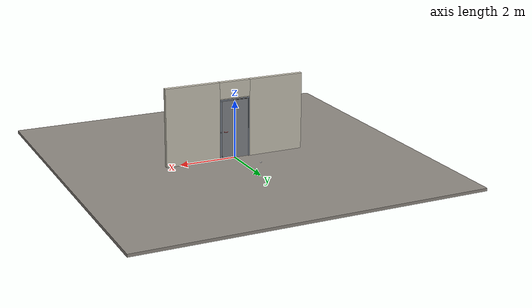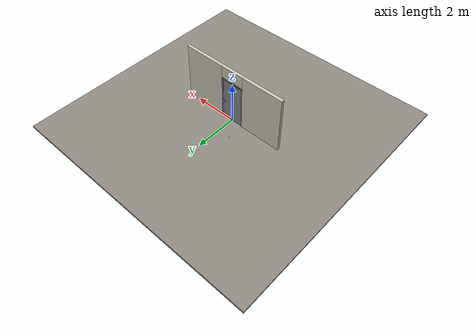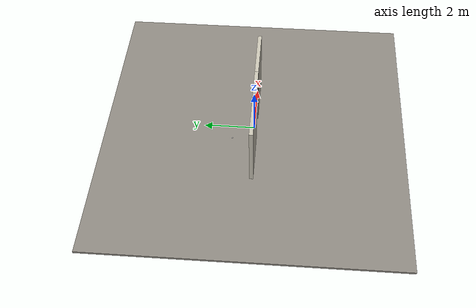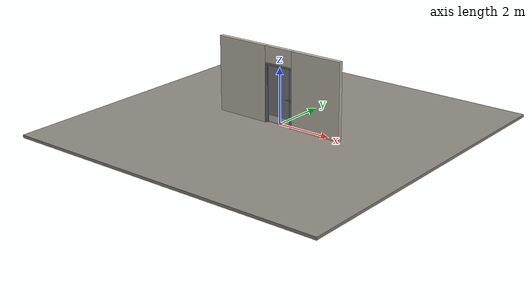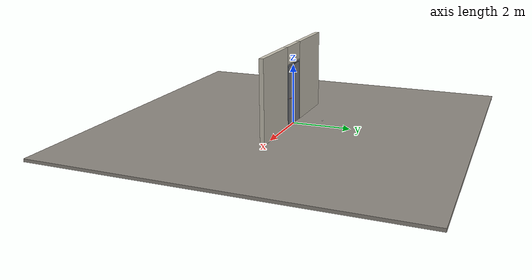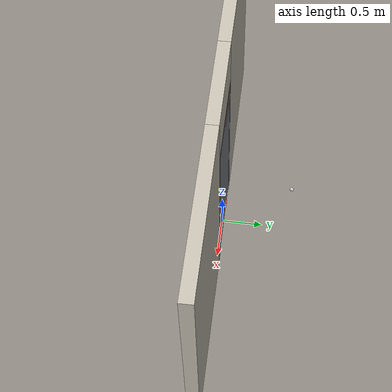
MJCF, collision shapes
<?xml version="1.0" ?>
<mujoco model="db0820_swing_single_full">
  <compiler angle="radian" meshdir="../../hardware" texturedir="../../textures" autolimits="true" inertiafromgeom="false"/>
  <option timestep="0.002" integrator="implicitfast" cone="elliptic" impratio="10" noslip_iterations="3">
    <flag multiccd="enable"/>
  </option>
  <size memory="16M"/>
  <default>
    <geom condim="4" solref="0.005 1" solimp="0.95 0.99 0.001"/>
    <joint solreflimit="0.005 1" solimplimit="0.95 0.99 0.001"/>
    <tendon solreflimit="0.005 1"/>
    <equality solref="0.002 1"/>
  </default>
  <visual>
    <headlight ambient="0.4 0.4 0.4" diffuse="0.7 0.7 0.7" specular="0.2 0.2 0.2"/>
    <quality shadowsize="4096"/>
    <map znear="0.01" zfar="60"/>
  </visual>
  <asset>
    <mesh name="hinge_e22b26c0c1" file="hinge_e22b26c0c1.obj"/>
    <mesh name="hinge_jamb_e1d088f8dc" file="hinge_jamb_e1d088f8dc.obj"/>
    <mesh name="lever_6268dcb28c" file="lever_6268dcb28c.obj"/>
    <material name="mat_floor" rgba="0.55 0.53 0.5 1" specular="0.2" shininess="0.15" reflectance="0"/>
    <material name="mat_wall" rgba="0.78 0.76 0.7 1" specular="0.2" shininess="0.1" reflectance="0"/>
    <material name="mat_leaf" rgba="0.5 0.51 0.53 1" specular="0.23" shininess="0.47" reflectance="0.02"/>
    <material name="mat_hinge" rgba="0.65 0.66 0.68 1" specular="0.74" shininess="0.5" reflectance="0.36"/>
    <material name="mat_op_stainless" rgba="0.75 0.76 0.77 1" specular="0.8" shininess="0.65" reflectance="0.4"/>
    <material name="mat_trim" rgba="0.85 0.66 0.3 1" specular="0.8" shininess="0.75" reflectance="0.4"/>
    <material name="mat_bolt" rgba="0.85 0.66 0.3 1" specular="0.8" shininess="0.75" reflectance="0.4"/>
    <material name="mat_frame" rgba="0.45 0.48 0.52 1" specular="0.32" shininess="0.6" reflectance="0.08"/>
    <material name="mat_closer" rgba="0.22 0.17 0.13 1" specular="0.8" shininess="0.6" reflectance="0.4"/>
    <material name="mat_kick" rgba="0.75 0.76 0.77 1" specular="0.8" shininess="0.65" reflectance="0.4"/>
    <material name="mat_stop" rgba="0.9 0.9 0.92 1" specular="0.8" shininess="0.9" reflectance="0.4"/>
    <texture name="skybox" type="skybox" builtin="gradient" rgb1="0.6 0.7 0.85" rgb2="0.9 0.92 0.95" width="256" height="256"/>
  </asset>
  <worldbody>
    <light name="sun" pos="1.5 -2.5 4" dir="-0.3 0.5 -0.8" directional="true" diffuse="0.8 0.8 0.8" specular="0.3 0.3 0.3" castshadow="true"/>
    <light name="fill" pos="-1.5 2.5 3" dir="0.3 -0.5 -0.7" directional="true" diffuse="0.35 0.35 0.4" castshadow="false"/>
    <camera name="robot_view" pos="0 -2.585687 1.734312" xyaxes="1 0 0 0 0.26963 0.962964" fovy="52"/>
    <camera name="far_view" pos="0 2.498687 1.734312" xyaxes="-1 0 0 0 -0.26963 0.962964" fovy="52"/>
    <camera name="iso" pos="1.932062 -2.178937 2.141063" xyaxes="0.741536 0.670913 0 -0.242917 0.268487 0.932151" fovy="46"/>
    <camera name="detail_handle" pos="0.496 -0.877 1.245" xyaxes="0.97561 0.219512 0 -0.070934 0.315262 0.94635" fovy="38"/>
    <geom name="floor" type="box" size="6 6 0.05" pos="0 0 -0.05" material="mat_floor" group="0" contype="1" conaffinity="1" friction="0.8 0.005 0.0001" density="2400"/>
    <geom name="wall_left" type="box" size="0.982 0.0725 1.35" pos="-1.518 -0.0435 1.35" material="mat_wall" group="0" contype="1" conaffinity="1" friction="0.6 0.005 0.0001" density="800"/>
    <geom name="wall_right" type="box" size="0.967 0.0725 1.35" pos="1.533 -0.0435 1.35" material="mat_wall" group="0" contype="1" conaffinity="1" friction="0.6 0.005 0.0001" density="800"/>
    <geom name="wall_header" type="box" size="0.551 0.0725 0.2875" pos="0.015 -0.0435 2.4125" material="mat_wall" group="0" contype="1" conaffinity="1" friction="0.6 0.005 0.0001" density="800"/>
    <geom name="hinge_0_jamb" type="mesh" mesh="hinge_jamb_e1d088f8dc" pos="-0.483 0.029 0.259" quat="0 1 0 0" material="mat_hinge" group="1" contype="0" conaffinity="0" density="7850"/>
    <geom name="hinge_1_jamb" type="mesh" mesh="hinge_jamb_e1d088f8dc" pos="-0.483 0.029 1.025" quat="0 1 0 0" material="mat_hinge" group="1" contype="0" conaffinity="0" density="7850"/>
    <geom name="hinge_2_jamb" type="mesh" mesh="hinge_jamb_e1d088f8dc" pos="-0.483 0.029 1.861" quat="0 1 0 0" material="mat_hinge" group="1" contype="0" conaffinity="0" density="7850"/>
    <geom name="jamb_hinge" type="box" size="0.025 0.0725 1.0225" pos="-0.511 -0.0435 1.0225" material="mat_frame" group="0" contype="1" conaffinity="1" friction="0.6 0.005 0.0001" density="300"/>
    <geom name="strike_965_wall_n" type="box" size="0.04 0.05325 0.0183" pos="0.526 -0.06275 0.965" material="mat_frame" group="0" contype="1" conaffinity="1" friction="0.6 0.005 0.0001" density="300"/>
    <geom name="strike_965_wall_p" type="box" size="0.04 0.008 0.0183" pos="0.526 0.0175 0.965" material="mat_frame" group="0" contype="1" conaffinity="1" friction="0.6 0.005 0.0001" density="300"/>
    <geom name="strike_965_ramp" type="box" size="0.04 0.018028 0.0183" pos="0.529282 0.018312 0.965" quat="0.957092 0 0 -0.289784" material="mat_frame" group="0" contype="1" conaffinity="1" friction="0.12 0.005 0.0001" density="300"/>
    <geom name="strike_965_back" type="box" size="0.0285 0.0095 0.0183" pos="0.5375 0 0.965" material="mat_frame" group="0" contype="1" conaffinity="1" friction="0.6 0.005 0.0001" density="300"/>
    <geom name="jamb_strike_0" type="box" size="0.04 0.0725 0.47335" pos="0.526 -0.0435 0.47335" material="mat_frame" group="0" contype="1" conaffinity="1" friction="0.6 0.005 0.0001" density="300"/>
    <geom name="jamb_strike_1" type="box" size="0.04 0.0725 0.53085" pos="0.526 -0.0435 1.51415" material="mat_frame" group="0" contype="1" conaffinity="1" friction="0.6 0.005 0.0001" density="300"/>
    <geom name="jamb_head" type="box" size="0.551 0.0725 0.025" pos="0.015 -0.0435 2.07" material="mat_frame" group="0" contype="1" conaffinity="1" friction="0.6 0.005 0.0001" density="300"/>
    <geom name="head_stud" type="box" size="0.551 0.0725 0.015" pos="0.015 -0.0435 2.11" material="mat_wall" group="0" contype="1" conaffinity="1" friction="0.6 0.005 0.0001" density="500"/>
    <geom name="stop_hinge" type="box" size="0.0055 0.016 1.0225" pos="-0.4805 -0.0385 1.0225" material="mat_frame" group="0" contype="1" conaffinity="1" friction="0.6 0.005 0.0001" density="300"/>
    <geom name="stop_strike" type="box" size="0.0055 0.016 1.0225" pos="0.4805 -0.0385 1.0225" material="mat_frame" group="0" contype="1" conaffinity="1" friction="0.6 0.005 0.0001" density="300"/>
    <geom name="stop_head" type="box" size="0.486 0.016 0.0055" pos="0 -0.0385 2.0395" material="mat_frame" group="0" contype="1" conaffinity="1" friction="0.6 0.005 0.0001" density="300"/>
    <geom name="closer_concealed_slot" type="box" size="0.25 0.008 0.004" pos="-0.186 0.032 2.05" material="mat_closer" group="1" contype="0" conaffinity="0" density="2700"/>
    <geom name="floor_stop_dome" type="sphere" size="0.025" pos="-0.574413 0.844386 0" material="mat_stop" group="0" contype="1" conaffinity="1" friction="0.6 0.005 0.0001" density="7000"/>
    <site name="approach_point" pos="0 -1.5 0" quat="1 0 0 0" size="0.05" rgba="0.2 0.9 0.2 0.5" group="4"/>
    <site name="goal_point" pos="0 1.5 0" quat="1 0 0 0" size="0.05" rgba="0.2 0.9 0.2 0.5" group="4"/>
    <site name="door_plane_center" pos="0 0 1.0225" quat="1 0 0 0" size="0.02" rgba="0.2 0.9 0.2 0.5" group="4"/>
    <body name="leaf" pos="-0.486 0 0">
      <inertial pos="0.478827 -0.001022 0.976043" mass="50.252496" quat="-0.498431 0.500706 0.500762 0.500098" diaginertia="3.993398077 18.464233213 22.439282117"/>
      <joint name="leaf_hinge" type="hinge" axis="0 0 1" pos="0.003 0.029 0" limited="true" range="0 1.658063" damping="10.318237" frictionloss="0.690372" stiffness="13.190762" springref="-2.424424" armature="0.02"/>
      <geom name="leaf_slab" type="box" size="0.4825 0.022 1.016" pos="0.4855 0 1.025" material="mat_leaf" group="0" contype="1" conaffinity="1" friction="0.4 0.005 0.0001" density="1"/>
      <geom name="hinge_0" type="mesh" mesh="hinge_e22b26c0c1" pos="0.003 0.029 0.259" quat="0 1 0 0" material="mat_hinge" group="1" contype="0" conaffinity="0" density="7850"/>
      <geom name="hinge_1" type="mesh" mesh="hinge_e22b26c0c1" pos="0.003 0.029 1.025" quat="0 1 0 0" material="mat_hinge" group="1" contype="0" conaffinity="0" density="7850"/>
      <geom name="hinge_2" type="mesh" mesh="hinge_e22b26c0c1" pos="0.003 0.029 1.861" quat="0 1 0 0" material="mat_hinge" group="1" contype="0" conaffinity="0" density="7850"/>
      <geom name="leaf_latch_bolt_faceplate" type="box" size="0.0006 0.014 0.0283" pos="0.9674 0 0.965" material="mat_bolt" group="1" contype="0" conaffinity="0" density="8500"/>
      <geom name="kick_plate_n" type="box" size="0.4525 0.0008 0.125" pos="0.4855 -0.0228 0.144" material="mat_kick" group="2" contype="0" conaffinity="0" density="7900"/>
      <site name="leaf_edge_mid" pos="0.968 0 1.016" quat="1 0 0 0" size="0.02" rgba="0.2 0.9 0.2 0.5" group="4"/>
      <body name="leaf_handle" pos="0.898 0 0.965">
        <inertial pos="-0.035149 0 0" mass="1.038236" quat="0 0.707107 0.707107 0" diaginertia="0.002348364 0.00382535 0.005606687"/>
        <joint name="leaf_handle_hinge" type="hinge" axis="0 -1 0" limited="true" range="0 0.96" damping="0.255791" frictionloss="0.05" stiffness="1.2" springref="-0.583333" armature="0.01"/>
        <geom name="leaf_handle_spindle" type="cylinder" size="0.006 0.03" pos="0 0 0" quat="0.707107 -0.707107 0 0" material="mat_op_stainless" group="1" contype="0" conaffinity="0" density="7850"/>
        <geom name="leaf_handle_lever_n" type="mesh" mesh="lever_6268dcb28c" pos="0 -0.022 0" quat="0.707107 0.707107 0 0" material="mat_op_stainless" group="1" contype="0" conaffinity="0" density="3000"/>
        <geom name="leaf_handle_lever_col_n" type="capsule" size="0.0095 0.0505" pos="-0.06 -0.077 0" quat="0.707107 0 -0.707107 0" material="mat_op_stainless" group="3" contype="1" conaffinity="1" rgba="0.8 0.3 0.3 0.25" friction="0.7 0.01 0.0001" density="3000"/>
        <geom name="leaf_handle_hub_col_n" type="cylinder" size="0.012 0.022" pos="0 -0.052 0" quat="0.707107 -0.707107 0 0" material="mat_op_stainless" group="3" contype="1" conaffinity="1" rgba="0.8 0.3 0.3 0.25" friction="0.6 0.005 0.0001" density="3000"/>
        <geom name="leaf_handle_lever_p" type="mesh" mesh="lever_6268dcb28c" pos="0 0.022 0" quat="-0.707107 0.707107 0 0" material="mat_op_stainless" group="1" contype="0" conaffinity="0" density="3000"/>
        <geom name="leaf_handle_lever_col_p" type="capsule" size="0.0095 0.0505" pos="-0.06 0.077 0" quat="0.707107 0 -0.707107 0" material="mat_op_stainless" group="3" contype="1" conaffinity="1" rgba="0.8 0.3 0.3 0.25" friction="0.7 0.01 0.0001" density="3000"/>
        <geom name="leaf_handle_hub_col_p" type="cylinder" size="0.012 0.022" pos="0 0.052 0" quat="0.707107 -0.707107 0 0" material="mat_op_stainless" group="3" contype="1" conaffinity="1" rgba="0.8 0.3 0.3 0.25" friction="0.6 0.005 0.0001" density="3000"/>
        <site name="leaf_handle_grip_n" pos="-0.096 -0.077 0" quat="1 0 0 0" size="0.012" rgba="0.2 0.9 0.2 0.5" group="4"/>
        <site name="leaf_handle_grip_p" pos="-0.096 0.077 0" quat="1 0 0 0" size="0.012" rgba="0.2 0.9 0.2 0.5" group="4"/>
      </body>
      <body name="leaf_latch_bolt" pos="0.968 0 0.965">
        <inertial pos="-0.0055 0 0" mass="0.074627" quat="0.92388 -0.382683 0 0" diaginertia="0.000002271 0.000013255 0.000013255"/>
        <joint name="leaf_latch_bolt_slide" type="slide" axis="-1 0 0" limited="true" range="0 0.019" damping="2" frictionloss="0.3" stiffness="600" springref="-0.01" armature="0.1"/>
        <geom name="leaf_latch_bolt_capsule" type="capsule" size="0.008 0.0165" pos="-0.0055 0 0" quat="0.707107 0 0.707107 0" material="mat_bolt" group="0" contype="1" conaffinity="1" friction="0.2 0.005 0.0001" density="8500"/>
      </body>
    </body>
  </worldbody>
  <tendon>
    <fixed name="leaf_latch_bolt_coupling" limited="true" range="0 10">
      <joint joint="leaf_latch_bolt_slide" coef="1"/>
      <joint joint="leaf_handle_hinge" coef="-0.020879"/>
    </fixed>
  </tendon>
  <sensor>
    <jointpos name="leaf_hinge_pos" joint="leaf_hinge"/>
    <jointvel name="leaf_hinge_vel" joint="leaf_hinge"/>
    <jointpos name="leaf_handle_hinge_pos" joint="leaf_handle_hinge"/>
    <jointvel name="leaf_handle_hinge_vel" joint="leaf_handle_hinge"/>
    <jointpos name="leaf_latch_bolt_slide_pos" joint="leaf_latch_bolt_slide"/>
    <jointvel name="leaf_latch_bolt_slide_vel" joint="leaf_latch_bolt_slide"/>
  </sensor>
</mujoco>
